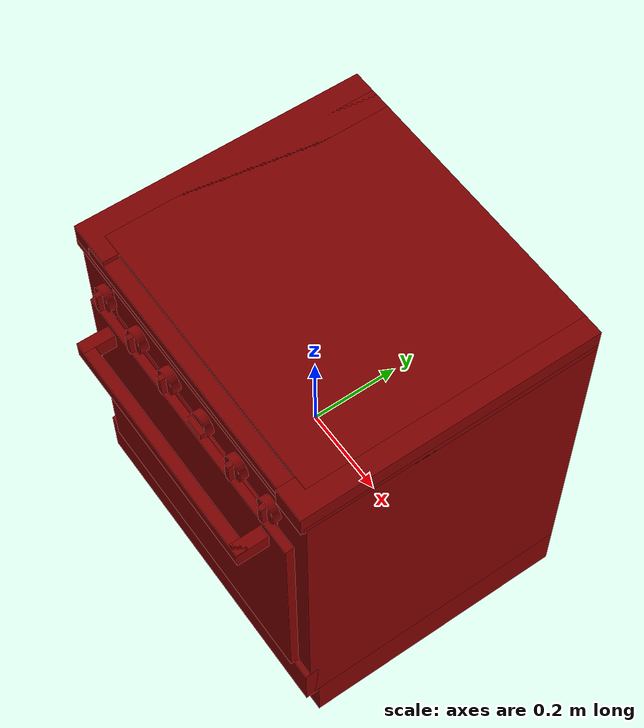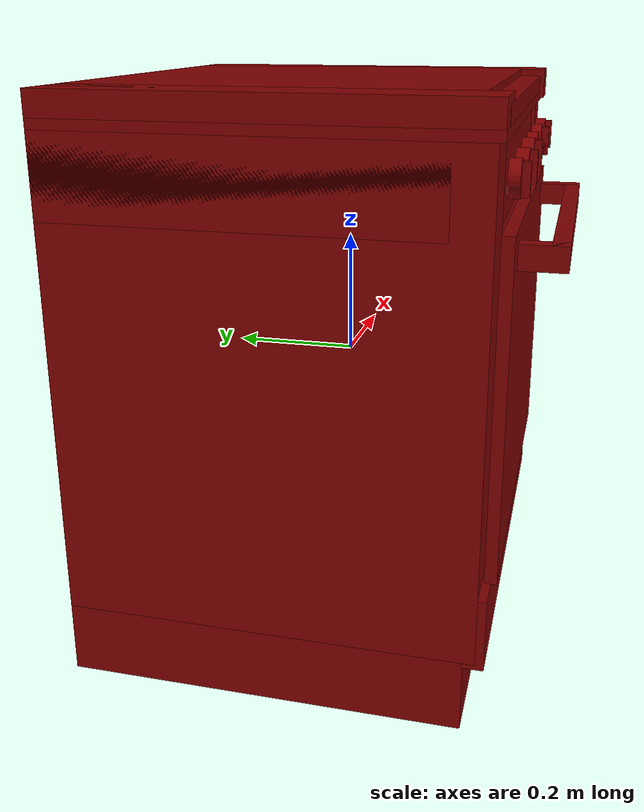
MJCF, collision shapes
<?xml version='1.0' encoding='UTF-8'?>
<mujoco model="model">
  <option timestep="0.002" gravity="0.0 0.0 -9.81"/>
  <compiler angle="radian"/>
  <asset>
    <mesh file="visuals/door.obj" name="door_vis"/>
    <mesh file="visuals/door_Clear.obj" name="door_Clear_vis"/>
    <mesh file="visuals/knob_front_left.obj" name="knob_front_left_vis"/>
    <mesh file="visuals/knob_front_right.obj" name="knob_front_right_vis"/>
    <mesh file="visuals/knob_rear_left.obj" name="knob_rear_left_vis"/>
    <mesh file="visuals/knob_rear_right.obj" name="knob_rear_right_vis"/>
    <mesh file="visuals/knob_temp.obj" name="knob_temp_vis"/>
    <mesh file="visuals/knob_time.obj" name="knob_time_vis"/>
    <mesh file="visuals/rack0.obj" name="rack0_vis"/>
    <mesh file="visuals/Body001.obj" name="Body001_vis"/>
    <texture file="visuals/T_BC001.png" name="Body001_material" type="2d"/>
    <material name="Body001_material" rgba="1 1 1 1.0" texture="Body001_material" shininess="0.1" specular="4"/>
    <texture file="visuals/T_BC001.png" name="door_material" type="2d"/>
    <material name="door_material" rgba="1 1 1 1.0" texture="door_material" shininess="0.1" specular="4"/>
    <texture file="visuals/T_BC001.png" name="door_Clear_material" type="2d"/>
    <material name="door_Clear_material" rgba="1 1 1 0.8" texture="door_Clear_material" shininess="0.1" specular="0.3103448502657381"/>
    <texture file="visuals/T_BC001.png" name="knob_front_left_material" type="2d"/>
    <material name="knob_front_left_material" rgba="1 1 1 1.0" texture="knob_front_left_material" shininess="0.1" specular="4"/>
    <texture file="visuals/T_BC001.png" name="knob_front_right_material" type="2d"/>
    <material name="knob_front_right_material" rgba="1 1 1 1.0" texture="knob_front_right_material" shininess="0.1" specular="4"/>
    <texture file="visuals/T_BC001.png" name="knob_rear_left_material" type="2d"/>
    <material name="knob_rear_left_material" rgba="1 1 1 1.0" texture="knob_rear_left_material" shininess="0.1" specular="4"/>
    <texture file="visuals/T_BC001.png" name="knob_rear_right_material" type="2d"/>
    <material name="knob_rear_right_material" rgba="1 1 1 1.0" texture="knob_rear_right_material" shininess="0.1" specular="4"/>
    <texture file="visuals/T_BC001.png" name="knob_temp_material" type="2d"/>
    <material name="knob_temp_material" rgba="1 1 1 1.0" texture="knob_temp_material" shininess="0.1" specular="4"/>
    <texture file="visuals/T_BC001.png" name="knob_time_material" type="2d"/>
    <material name="knob_time_material" rgba="1 1 1 1.0" texture="knob_time_material" shininess="0.1" specular="4"/>
    <texture file="visuals/T_BC001.png" name="rack0_material" type="2d"/>
    <material name="rack0_material" rgba="1 1 1 1.0" texture="rack0_material" shininess="0.1" specular="4"/>
  </asset>
  <default>
    <default class="visual">
      <geom conaffinity="0" contype="0" group="1" type="mesh"/>
    </default>
    <default class="collision">
      <geom group="0" rgba="0.5 0 0 0.5"/>
    </default>
    <default class="spawn">
      <geom group="0" rgba="1 1 1 0.5" contype="0" conaffinity="0"/>
      <site group="0" rgba="1 1 1 0.5"/>
    </default>
    <default class="region">
      <geom group="1" conaffinity="0" contype="0" rgba="0 1 0 0"/>
    </default>
  </default>
  <worldbody>
    <body>
      <body name="object">
        <geom mesh="Body001_vis" type="mesh" solimp="0.998 0.998 0.001" solref="0.001 1" friction="0.95 0.3 0.1" class="visual" material="Body001_material"/>
        <geom type="box" pos="-0.32438320 0.04201647 0.43333739" size="0.05131060630083084 0.32556483149528503 0.025395892560482025" quat="1.0 0.0 0.0 0.0" class="collision"/>
        <geom type="box" pos="0.33804926 0.03849019 0.43350101" size="0.037644702941179276 0.32909107208251953 0.02523227594792843" quat="1.0 0.0 0.0 0.0" class="collision"/>
        <geom type="box" pos="-0.00150467 -0.25629648 0.42533440" size="0.32577696442604065 0.027789197862148285 0.021897345781326294" quat="1.0 0.0 0.0 0.0" class="collision"/>
        <geom type="box" pos="0.00000005 0.04171448 0.41133624" size="0.3756939470767975 0.32586684823036194 0.007899037562310696" quat="1.0 0.0 0.0 0.0" class="collision"/>
        <geom type="box" pos="0.00000007 0.07491239 0.34174866" size="0.3756938576698303 0.2926689088344574 0.06580030918121338" quat="1.0 0.0 0.0 0.0" class="collision"/>
        <geom type="box" pos="0.00147919 0.04736665 0.34194496" size="0.33674007654190063 0.3202146589756012 0.06599660217761993" quat="1.0 0.0 0.0 0.0" class="collision"/>
        <geom type="box" pos="-0.32556140 0.04583687 0.03184420" size="0.05013244226574898 0.32174447178840637 0.37609729170799255" quat="1.0 0.0 0.0 0.0" class="collision"/>
        <geom type="box" pos="0.32917306 0.04448253 0.03164813" size="0.04652092605829239 0.32309871912002563 0.3759011924266815" quat="1.0 0.0 0.0 0.0" class="collision"/>
        <geom type="box" pos="-0.00238723 0.36758128 0.01922751" size="0.32665953040122986 4.772715911371961e-08 0.26213300228118896" quat="1.0 0.0 0.0 0.0" class="collision"/>
        <geom type="box" pos="-0.00150467 0.05466532 -0.29087511" size="0.32577696442604065 0.31291601061820984 0.06112684682011604" quat="1.0 0.0 0.0 0.0" class="collision"/>
        <geom type="box" pos="0.00000007 -0.27248302 -0.29494798" size="0.37569382786750793 0.016561346128582954 0.05705389380455017" quat="1.0 0.0 0.0 0.0" class="collision"/>
        <geom type="box" pos="0.00000007 0.05488900 -0.40123477" size="0.3756938576698303 0.31269219517707825 0.05724668502807617" quat="1.0 0.0 0.0 0.0" class="collision"/>
        <geom type="box" pos="-0.27385509 0.10552749 0.01703148" size="0.0062475260347127914 0.23480769991874695 0.007247717119753361" quat="1.0 0.0 0.0 0.0" class="collision"/>
        <geom type="box" pos="0.28065372 0.10552749 0.01703148" size="0.008244672790169716 0.23480767011642456 0.0072477166540920734" quat="1.0 0.0 0.0 0.0" class="collision"/>
        <geom type="box" pos="0.00362271 0.05934670 0.43613354" size="0.3267553448677063 0.3082345724105835 0.02259973995387554" quat="1.0 0.0 0.0 0.0" class="collision"/>
        <body name="door">
          <joint axis="1.0 0.0 0.0" pos="0.00154870 -0.30157217 -0.23497504" limited="true" name="door_joint" range="0.0 1.5707963267948966" type="hinge" damping="1" frictionloss="1" armature=".01" stiffness="0.05"/>
          <geom mesh="door_vis" type="mesh" solimp="0.998 0.998 0.001" solref="0.001 1" friction="0.95 0.3 0.1" class="visual" material="door_material"/>
          <geom class="collision" type="box" pos="0.00126630 -0.28922191 0.02419154" size="0.3348972797393799 0.009196015074849129 0.2565017342567444" quat="1.0 0.0 0.0 0.0" name="door_main"/>
          <geom type="box" pos="-0.26085198 -0.33280977 0.23954757" size="0.013943732716143131 0.035224854946136475 0.018639419227838516" quat="1.0 0.0 0.0 0.0" class="collision"/>
          <geom class="collision" type="box" pos="0.00301652 -0.35542473 0.23954757" size="0.2778121829032898 0.012609956786036491 0.018639421090483665" quat="1.0 0.0 0.0 0.0" name="door_handle_main"/>
          <geom type="box" pos="0.26810336 -0.33280977 0.23954757" size="0.01394373457878828 0.03522485867142677 0.018639421090483665" quat="1.0 0.0 0.0 0.0" class="collision"/>
          <body name="door_Clear">
            <geom mesh="door_Clear_vis" type="mesh" solimp="0.998 0.998 0.001" solref="0.001 1" friction="0.95 0.3 0.1" class="visual" material="door_Clear_material"/>
            <geom type="box" pos="0.00693922 -0.28880814 0.02549830" size="0.23763589560985565 0.008296974003314972 0.18880362808704376" quat="1.0 0.0 0.0 0.0" class="collision"/>
          </body>
        </body>
        <body name="knob_front_left">
          <joint axis="0.0 -1.0 0.0" pos="-0.27589991 -0.29464325 0.34716562" limited="true" name="knob_front_left_joint" range="0.0 3.141592653589793" type="hinge" damping="0.05" frictionloss="0.75" armature="1"/>
          <geom mesh="knob_front_left_vis" type="mesh" solimp="0.998 0.998 0.001" solref="0.001 1" friction="0.95 0.3 0.1" class="visual" material="knob_front_left_material"/>
          <geom type="cylinder" pos="-0.27624753 -0.29000422 0.34696216" size="0.02695857733488083 0.008445155806839466" quat="0.70710688829422 0.7071066498756409 0.0 0.0" class="collision" friction="100 0.5 0.01"/>
          <geom type="box" pos="-0.27626213 -0.30286655 0.34593690" size="0.005962768103927374 0.007199874613434076 0.024002766236662865" quat="1.0 0.0 0.0 0.0" class="collision" name="knob_front_left_main" friction="100 0.5 0.01"/>
        </body>
        <body name="knob_front_right">
          <joint axis="0.0 -1.0 0.0" pos="0.27553830 -0.29464325 0.34716562" limited="true" name="knob_front_right_joint" range="0.0 3.141592653589793" type="hinge" damping="0.05" frictionloss="0.75" armature="1"/>
          <geom mesh="knob_front_right_vis" type="mesh" solimp="0.998 0.998 0.001" solref="0.001 1" friction="0.95 0.3 0.1" class="visual" material="knob_front_right_material"/>
          <geom type="cylinder" pos="0.27546755 -0.29036948 0.34703505" size="0.026809222996234894 0.00839253980666399" quat="0.7071068286895752 0.7071067690849304 0.0 0.0" class="collision" friction="100 0.5 0.01"/>
          <geom type="box" pos="0.27545303 -0.30315467 0.34601546" size="0.005929732229560614 0.007159987930208445 0.023869769647717476" quat="1.0 0.0 0.0 0.0" class="collision" name="knob_front_right_main" friction="100 0.5 0.01"/>
        </body>
        <body name="knob_rear_left">
          <joint axis="0.0 -1.0 0.0" pos="-0.16074353 -0.29464325 0.34716562" limited="true" name="knob_rear_left_joint" range="0.0 3.141592653589793" type="hinge" damping="0.05" frictionloss="0.75" armature="1"/>
          <geom mesh="knob_rear_left_vis" type="mesh" solimp="0.998 0.998 0.001" solref="0.001 1" friction="0.95 0.3 0.1" class="visual" material="knob_rear_left_material"/>
          <geom type="cylinder" pos="-0.16060683 -0.29098943 0.34695861" size="0.026647401973605156 0.009387573227286339" quat="0.7071068286895752 0.7071067690849304 0.0 0.0" class="collision" friction="100 0.5 0.01"/>
          <geom type="box" pos="-0.16062131 -0.30474320 0.34685177" size="0.0058941105380654335 0.007117194589227438 0.023726284503936768" quat="1.0 0.0 0.0 0.0" class="collision" name="knob_rear_left_main" friction="100 0.5 0.01"/>
        </body>
        <body name="knob_rear_right">
          <joint axis="0.0 -1.0 0.0" pos="0.17135912 -0.29464325 0.34716562" limited="true" name="knob_rear_right_joint" range="0.0 3.141592653589793" type="hinge" damping="0.05" frictionloss="0.75" armature="1"/>
          <geom mesh="knob_rear_right_vis" type="mesh" solimp="0.998 0.998 0.001" solref="0.001 1" friction="0.95 0.3 0.1" class="visual" material="knob_rear_right_material"/>
          <geom type="cylinder" pos="0.17147248 -0.29033348 0.34697908" size="0.02718520164489746 0.008524991571903229" quat="0.7071068286895752 0.7071067690849304 0.0 0.0" class="collision" friction="100 0.5 0.01"/>
          <geom type="box" pos="0.17145771 -0.30331275 0.34594521" size="0.006013091653585434 0.007260401267558336 0.02420542575418949" quat="1.0 0.0 0.0 0.0" class="collision" name="knob_rear_right_main" friction="100 0.5 0.01"/>
        </body>
        <body name="knob_temp">
          <joint axis="0.0 1.0 0.0" pos="-0.05094598 -0.29464325 0.34876746" limited="true" name="knob_temp_joint" range="0.0 5.585053606381854" type="hinge" damping="0.05" armature="1" frictionloss="0.75"/>
          <geom mesh="knob_temp_vis" type="mesh" solimp="0.998 0.998 0.001" solref="0.001 1" friction="0.95 0.3 0.1" class="visual" material="knob_temp_material"/>
          <geom type="cylinder" pos="-0.05082283 -0.29083463 0.34862021" size="0.02685207687318325 0.009459678083658218" quat="0.7071068286895752 0.7071067690849304 0.0 0.0" class="collision" friction="100 0.5 0.01"/>
          <geom class="collision" type="box" pos="-0.05083743 -0.30469396 0.34828708" size="0.005939197260886431 0.007171344012022018 0.023907678201794624" quat="1.0 0.0 0.0 0.0" name="knob_temp_main" friction="100 0.5 0.01"/>
        </body>
        <body name="knob_time">
          <joint axis="0.0 1.0 0.0" pos="0.06012192 -0.29464325 0.34633127" limited="true" name="knob_time_joint" range="0.0 5.288347633542818" type="hinge" damping="0.05" armature="1" frictionloss="0.75"/>
          <geom mesh="knob_time_vis" type="mesh" solimp="0.998 0.998 0.001" solref="0.001 1" friction="0.95 0.3 0.1" class="visual" material="knob_time_material"/>
          <geom type="cylinder" pos="0.06022315 -0.28996196 0.34619960" size="0.026502354070544243 0.008284438401460648" quat="0.5 0.5 -0.4999999701976776 0.5" class="collision" friction="100 0.5 0.01"/>
          <geom class="collision" type="box" pos="0.06083135 -0.30258879 0.34588686" size="0.023597078397870064 0.0070777637884020805 0.005862010642886162" quat="1.0 0.0 0.0 0.0" name="knob_time_main" friction="100 0.5 0.01"/>
        </body>
        <body name="rack0">
          <geom class="region" name="reg_rack0" type="box" pos="0.006054864999999993 0.093272135 0.153320255" size="0.27125128499999995 0.246371535 0.11954863499999999"/>
          <joint axis="0.0 -1.0 0.0" pos="0.00382757 0.09155674 0.03064817" limited="true" name="rack0_joint" range="0.0 0.45" type="slide" damping="1" frictionloss="1" armature=".01" stiffness="0.05"/>
          <geom mesh="rack0_vis" type="mesh" solimp="0.998 0.998 0.001" solref="0.001 1" friction="0.95 0.3 0.1" class="visual" material="rack0_material"/>
          <geom type="box" pos="0.00353689 0.09084898 0.03057665" size="0.27813947200775146 0.2503909170627594 0.0019921469502151012" quat="1.0 0.0 0.0 0.0" class="collision"/>
        </body>
        <geom class="region" name="reg_int" type="box" pos="0.0026234549999999968 0.051198839999999995 0.024427204999999994" size="0.271961095 0.30430181 0.24631343499999997"/>
        <site type="cylinder" rgba="0.3 0.4 1 0.5" size="0.04184328764677048 0.014999999664723873" pos="-0.14495745 0.18761291 0.43493423" name="burner_on_rear_left"/>
        <site type="cylinder" rgba="0.3 0.4 1 0.5" size="0.0424492284655571 0.014999999664723873" pos="-0.14508752 -0.09678614 0.43458823" name="burner_on_front_left"/>
        <site type="cylinder" rgba="0.3 0.4 1 0.5" size="0.060189858078956604 0.014999999664723873" pos="0.14763418 -0.09687903 0.43339127" name="burner_on_front_right"/>
        <site type="cylinder" rgba="0.3 0.4 1 0.5" size="0.038490861654281616 0.014999999664723873" pos="0.14709358 0.18761258 0.43443698" name="burner_on_rear_right"/>
        <site type="cylinder" rgba="0.5 0 0 0" size="0.04184328764677048 5.0000002374872565e-05" pos="-0.14495745 0.18761291 0.45878330" name="burner_rear_left_place_site"/>
        <site type="cylinder" rgba="0.5 0 0 0" size="0.0424492284655571 4.999999873689376e-05" pos="-0.14508752 -0.09678614 0.45878327" name="burner_front_left_place_site"/>
        <site type="cylinder" rgba="0.5 0 0 0" size="0.060189858078956604 4.999999873689376e-05" pos="0.14763418 -0.09687903 0.45878330" name="burner_front_right_place_site"/>
        <site type="cylinder" rgba="0.5 0 0 0" size="0.038490861654281616 4.999999873689376e-05" pos="0.14709358 0.18761258 0.45878330" name="burner_rear_right_place_site"/>
        <geom class="region" name="reg_main" type="box" pos="6.999999999091067e-08 0.032749150000000005 -0.006279525000000008" size="0.37669389 0.33583213 0.453201965"/>
      </body>
    </body>
  </worldbody>
  <actuator>
    <motor name="door_joint_actuator" joint="door_joint" gear="50"/>
    <motor name="knob_front_left_joint_actuator" joint="knob_front_left_joint" gear="50"/>
    <motor name="knob_front_right_joint_actuator" joint="knob_front_right_joint" gear="50"/>
    <motor name="knob_rear_left_joint_actuator" joint="knob_rear_left_joint" gear="50"/>
    <motor name="knob_rear_right_joint_actuator" joint="knob_rear_right_joint" gear="50"/>
    <motor name="knob_temp_joint_actuator" joint="knob_temp_joint" gear="50"/>
    <motor name="knob_time_joint_actuator" joint="knob_time_joint" gear="50"/>
    <motor name="rack0_joint_actuator" joint="rack0_joint" gear="50"/>
  </actuator>
</mujoco>
